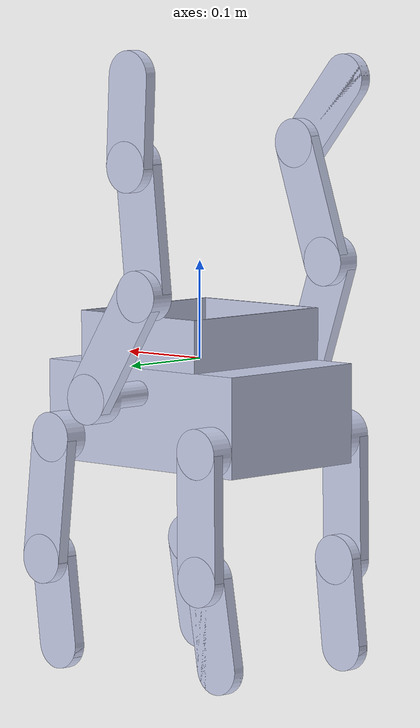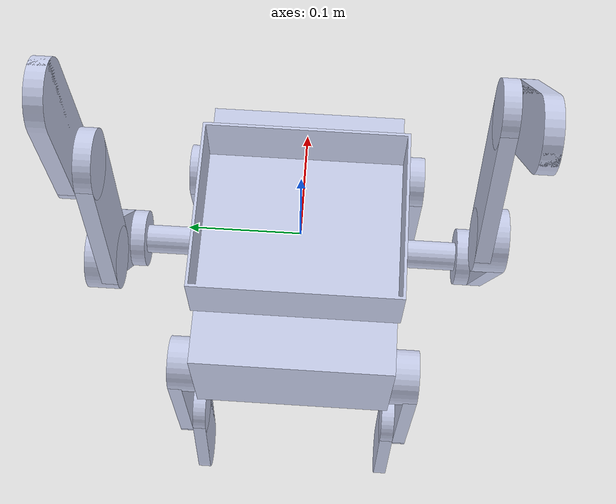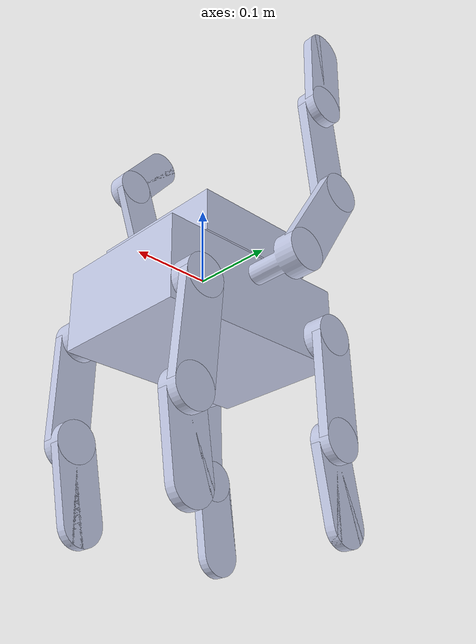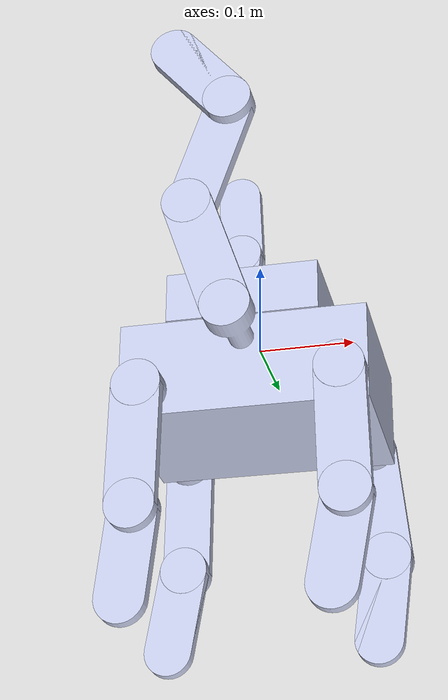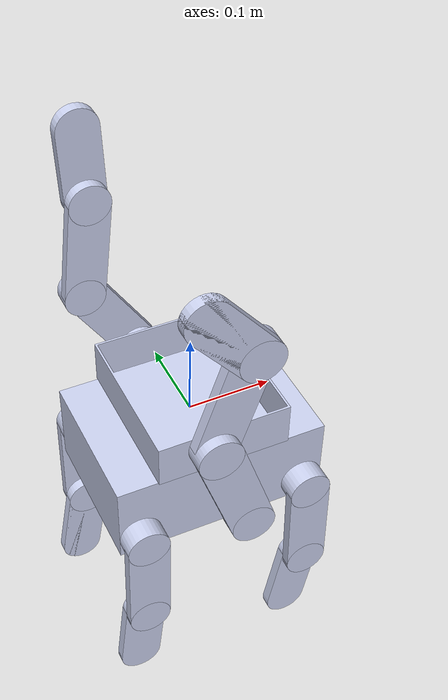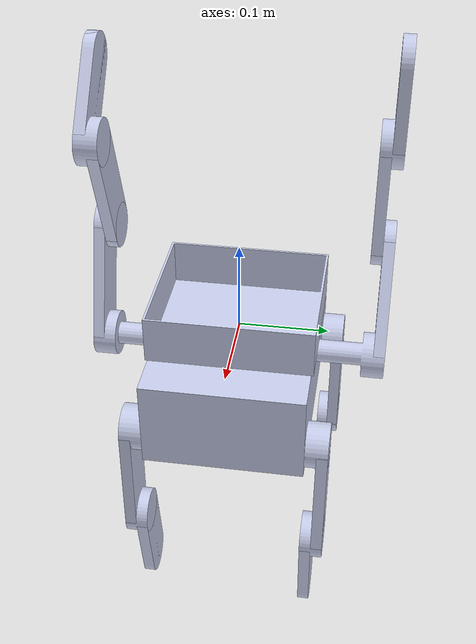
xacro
<?xml version="1.0"?>
<!-- Name your robot here -->
<robot name ="quad_walk" xmlns:xacro="http://wiki.ros.org/xacro">

<!-- Include your urdf files here -->
	<!-- Include Robot's urdf filepath -->
	<!-- Include Lidar's urdf filepath -->
	<xacro:include filename="$(find Project2_Assembly)/urdf/Project2_Assembly.urdf"/>

<!-- Add gazebo plugin for control here -->
	<gazebo>
		<plugin name="gazebo_ros_control" filename="libgazebo_ros_control.so">
			<robotNamespace>/quad_walk</robotNamespace>
			<robotSimType>gazebo_ros_control/DefaultRobotHWSim</robotSimType>
		        <legacyModeNS>true</legacyModeNS>
                </plugin>
	</gazebo>

</robot>

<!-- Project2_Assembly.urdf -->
<robot
  name="Project2_Assembly">
  <link
    name="dummy_link">
  </link>
  <joint
    name="dummy_joint"
    type="fixed">
    <parent
      link="dummy_link" />
    <child
      link="base_link" />
  </joint>
  <link
    name="base_link">
    <inertial>
      <origin
        xyz="-0.185748920268411 0.185789407892482 -0.798271405453909"
        rpy="0 0 0" />
      <mass
        value="4.36700755653188" />
      <inertia
        ixx="0.030365726134738"
        ixy="0.00652149162392971"
        ixz="0.00297506888940774"
        iyy="0.0178204642076725"
        iyz="0.000563260489121419"
        izz="0.0284925976105569" />
    </inertial>
    <visual>
      <origin
        xyz="0 0 0"
        rpy="0 0 0" />
      <geometry>
        <mesh
          filename="package://Project2_Assembly/meshes/base_link.STL" />
      </geometry>
      <material
        name="">
        <color
          rgba="0.792156862745098 0.819607843137255 0.933333333333333 1" />
      </material>
    </visual>
    <collision>
      <origin
        xyz="0 0 0"
        rpy="0 0 0" />
      <geometry>
        <mesh
          filename="package://Project2_Assembly/meshes/base_link.STL" />
      </geometry>
    </collision>
  </link>
  <link
    name="platform_link">
    <inertial>
      <origin
        xyz="8.32667268468867E-17 -5.55111512312578E-17 0.00454448000326668"
        rpy="0 0 0" />
      <mass
        value="0.221453327467568" />
      <inertia
        ixx="0.000766812354982266"
        ixy="3.04931861011548E-20"
        ixz="-1.01813360259967E-18"
        iyy="0.00100112681592481"
        iyz="1.21972744404619E-18"
        izz="0.00157928891231331" />
    </inertial>
    <visual>
      <origin
        xyz="0 0 0"
        rpy="0 0 0" />
      <geometry>
        <mesh
          filename="package://Project2_Assembly/meshes/platform_link.STL" />
      </geometry>
      <material
        name="">
        <color
          rgba="0.792156862745098 0.819607843137255 0.933333333333333 1" />
      </material>
    </visual>
    <collision>
      <origin
        xyz="0 0 0"
        rpy="0 0 0" />
      <geometry>
        <mesh
          filename="package://Project2_Assembly/meshes/platform_link.STL" />
      </geometry>
    </collision>
  </link>
  <joint
    name="platform_joint"
    type="fixed">
    <origin
      xyz="0 0 0"
      rpy="0 0 1.5707963267949" />
    <parent
      link="base_link" />
    <child
      link="platform_link" />
    <axis
      xyz="0 0 0" />
  </joint>
  <link
    name="left_arm_link">
    <inertial>
      <origin
        xyz="5.55111512312578E-17 -1.11022302462516E-16 0.0269203616457798"
        rpy="0 0 0" />
      <mass
        value="0.0772222198144585" />
      <inertia
        ixx="4.25551704324029E-05"
        ixy="1.6940658945086E-21"
        ixz="-2.5410988417629E-20"
        iyy="4.25551704324029E-05"
        iyz="9.95396061921811E-20"
        izz="1.8682757750811E-05" />
    </inertial>
    <visual>
      <origin
        xyz="0 0 0"
        rpy="0 0 0" />
      <geometry>
        <mesh
          filename="package://Project2_Assembly/meshes/left_arm_link.STL" />
      </geometry>
      <material
        name="">
        <color
          rgba="0.792156862745098 0.819607843137255 0.933333333333333 1" />
      </material>
    </visual>
    <collision>
      <origin
        xyz="0 0 0"
        rpy="0 0 0" />
      <geometry>
        <mesh
          filename="package://Project2_Assembly/meshes/left_arm_link.STL" />
      </geometry>
    </collision>
  </link>
  <joint
    name="left_arm_joint"
    type="fixed">
    <origin
      xyz="0 -0.112779638354221 -0.0279400000000001"
      rpy="-1.57079632679486 1.49005517178331 -3.14159265358976" />
    <parent
      link="base_link" />
    <child
      link="left_arm_link" />
    <axis
      xyz="0 0 1" />
  </joint>
  <link
    name="left_arm_link1">
    <inertial>
      <origin
        xyz="0.0634999999999999 -7.76462227847219E-14 0.0040296383542201"
        rpy="0 0 0" />
      <mass
        value="0.0561945800618472" />
      <inertia
        ixx="1.42240417239566E-05"
        ixy="2.92460359654413E-17"
        ixz="-4.70103285726137E-20"
        iyy="3.81793048154064E-05"
        iyz="8.470329472543E-21"
        izz="5.08927425696672E-05" />
    </inertial>
    <visual>
      <origin
        xyz="0 0 0"
        rpy="0 0 0" />
      <geometry>
        <mesh
          filename="package://Project2_Assembly/meshes/left_arm_link1.STL" />
      </geometry>
      <material
        name="">
        <color
          rgba="0.792156862745098 0.819607843137255 0.933333333333333 1" />
      </material>
    </visual>
    <collision>
      <origin
        xyz="0 0 0"
        rpy="0 0 0" />
      <geometry>
        <mesh
          filename="package://Project2_Assembly/meshes/left_arm_link1.STL" />
      </geometry>
    </collision>
  </link>
  <joint
    name="left_arm_joint1"
    type="continuous">
    <origin
      xyz="0 0 0.0499999999999999"
      rpy="3.14159265358979 0 -2.73383166744153" />
    <parent
      link="left_arm_link" />
    <child
      link="left_arm_link1" />
    <axis
      xyz="0 0 1" />
  </joint>
  <link
    name="left_arm_link2">
    <inertial>
      <origin
        xyz="-1.52655665885959E-15 2.4980018054066E-16 -0.0103796383542208"
        rpy="0 0 0" />
      <mass
        value="0.0514814798763058" />
      <inertia
        ixx="1.10712638523325E-05"
        ixy="4.76456032830544E-22"
        ixz="-1.48230765769503E-20"
        iyy="1.10712638523325E-05"
        iyz="1.47171974585435E-20"
        izz="1.66068957784987E-05" />
    </inertial>
    <visual>
      <origin
        xyz="0 0 0"
        rpy="0 0 0" />
      <geometry>
        <mesh
          filename="package://Project2_Assembly/meshes/left_arm_link2.STL" />
      </geometry>
      <material
        name="">
        <color
          rgba="0.792156862745098 0.819607843137255 0.933333333333333 1" />
      </material>
    </visual>
    <collision>
      <origin
        xyz="0 0 0"
        rpy="0 0 0" />
      <geometry>
        <mesh
          filename="package://Project2_Assembly/meshes/left_arm_link2.STL" />
      </geometry>
    </collision>
  </link>
  <joint
    name="left_arm_joint2"
    type="fixed">
    <origin
      xyz="0.127 0 0"
      rpy="-3.14159265358979 0 0.141401224368281" />
    <parent
      link="left_arm_link1" />
    <child
      link="left_arm_link2" />
    <axis
      xyz="0 0 1" />
  </joint>
  <link
    name="left_arm_link3">
    <inertial>
      <origin
        xyz="0.0635000000000196 6.46704911844154E-15 0.00445605177225594"
        rpy="0 0 0" />
      <mass
        value="0.0561945800618472" />
      <inertia
        ixx="1.42240417239566E-05"
        ixy="4.89690922631392E-20"
        ixz="1.63053842346453E-19"
        iyy="3.81793048154064E-05"
        iyz="-3.87517573368842E-20"
        izz="5.08927425696671E-05" />
    </inertial>
    <visual>
      <origin
        xyz="0 0 0"
        rpy="0 0 0" />
      <geometry>
        <mesh
          filename="package://Project2_Assembly/meshes/left_arm_link3.STL" />
      </geometry>
      <material
        name="">
        <color
          rgba="0.792156862745098 0.819607843137255 0.933333333333333 1" />
      </material>
    </visual>
    <collision>
      <origin
        xyz="0 0 0"
        rpy="0 0 0" />
      <geometry>
        <mesh
          filename="package://Project2_Assembly/meshes/left_arm_link3.STL" />
      </geometry>
    </collision>
  </link>
  <joint
    name="left_arm_joint3"
    type="continuous">
    <origin
      xyz="0 0 -0.0122735865819643"
      rpy="3.14159265358979 0 -0.51044745877229" />
    <parent
      link="left_arm_link2" />
    <child
      link="left_arm_link3" />
    <axis
      xyz="0 0 1" />
  </joint>
  <link
    name="left_arm_link4">
    <inertial>
      <origin
        xyz="1.13797860024079E-14 1.6903145549918E-14 -0.00189394822774391"
        rpy="0 0 0" />
      <mass
        value="0.0514814798763058" />
      <inertia
        ixx="1.10712638523325E-05"
        ixy="2.11758236813575E-22"
        ixz="-3.3881317890172E-21"
        iyy="1.10712638523325E-05"
        iyz="1.05879118406788E-21"
        izz="1.66068957784987E-05" />
    </inertial>
    <visual>
      <origin
        xyz="0 0 0"
        rpy="0 0 0" />
      <geometry>
        <mesh
          filename="package://Project2_Assembly/meshes/left_arm_link4.STL" />
      </geometry>
      <material
        name="">
        <color
          rgba="0.792156862745098 0.819607843137255 0.933333333333333 1" />
      </material>
    </visual>
    <collision>
      <origin
        xyz="0 0 0"
        rpy="0 0 0" />
      <geometry>
        <mesh
          filename="package://Project2_Assembly/meshes/left_arm_link4.STL" />
      </geometry>
    </collision>
  </link>
  <joint
    name="left_arm_joint4"
    type="fixed">
    <origin
      xyz="0.12700000000002 0 0"
      rpy="0 0 2.25512297298652" />
    <parent
      link="left_arm_link3" />
    <child
      link="left_arm_link4" />
    <axis
      xyz="0 0 1" />
  </joint>
  <link
    name="left_arm_link5">
    <inertial>
      <origin
        xyz="-0.0643991133502865 -7.39686090156511E-14 0.00824394822774355"
        rpy="0 0 0" />
      <mass
        value="0.0573547240000001" />
      <inertia
        ixx="1.31052198647767E-05"
        ixy="-2.4546591294956E-17"
        ixz="1.35737029797502E-19"
        iyy="4.03881189381033E-05"
        iyz="4.2351647362715E-21"
        izz="5.19515482305533E-05" />
    </inertial>
    <visual>
      <origin
        xyz="0 0 0"
        rpy="0 0 0" />
      <geometry>
        <mesh
          filename="package://Project2_Assembly/meshes/left_arm_link5.STL" />
      </geometry>
      <material
        name="">
        <color
          rgba="0.792156862745098 0.819607843137255 0.933333333333333 1" />
      </material>
    </visual>
    <collision>
      <origin
        xyz="0 0 0"
        rpy="0 0 0" />
      <geometry>
        <mesh
          filename="package://Project2_Assembly/meshes/left_arm_link5.STL" />
      </geometry>
    </collision>
  </link>
  <joint
    name="left_arm_joint5"
    type="continuous">
    <origin
      xyz="0 0 0"
      rpy="3.14159265358979 0 -0.136200538453035" />
    <parent
      link="left_arm_link4" />
    <child
      link="left_arm_link5" />
    <axis
      xyz="0 0 1" />
  </joint>
  <link
    name="left_arm_dummy_link">
    <inertial>
      <origin
        xyz="0.0245008866497048 0.0254 0.00635000000000008"
        rpy="0 0 0" />
      <mass
        value="0.0573547240000001" />
      <inertia
        ixx="1.31052198647767E-05"
        ixy="5.11396141904784E-20"
        ixz="5.9292306307801E-20"
        iyy="4.03881189381033E-05"
        iyz="-1.77876918923403E-20"
        izz="5.19515482305533E-05" />
    </inertial>
    <visual>
      <origin
        xyz="0 0 0"
        rpy="0 0 0" />
      <geometry>
        <mesh
          filename="package://Project2_Assembly/meshes/left_arm_dummy_link.STL" />
      </geometry>
      <material
        name="">
        <color
          rgba="0.792156862745098 0.819607843137255 0.933333333333333 1" />
      </material>
    </visual>
    <collision>
      <origin
        xyz="0 0 0"
        rpy="0 0 0" />
      <geometry>
        <mesh
          filename="package://Project2_Assembly/meshes/left_arm_dummy_link.STL" />
      </geometry>
    </collision>
  </link>
  <joint
    name="left_arm_dummy_joint"
    type="fixed">
    <origin
      xyz="-0.0888999999999685 -0.0254000000000961 0.00189394822774358"
      rpy="0 0 0" />
    <parent
      link="left_arm_link5" />
    <child
      link="left_arm_dummy_link" />
    <axis
      xyz="0 0 0" />
  </joint>
  <link
    name="right_arm_link">
    <inertial>
      <origin
        xyz="5.55111512312578E-17 2.08166817117217E-15 0.0270180534713057"
        rpy="0 0 0" />
      <mass
        value="0.0772222198144587" />
      <inertia
        ixx="4.2555170432403E-05"
        ixy="-1.85288457211878E-22"
        ixz="6.22569216231911E-20"
        iyy="4.2555170432403E-05"
        iyz="-4.31457407507659E-20"
        izz="1.86827577508111E-05" />
    </inertial>
    <visual>
      <origin
        xyz="0 0 0"
        rpy="0 0 0" />
      <geometry>
        <mesh
          filename="package://Project2_Assembly/meshes/right_arm_link.STL" />
      </geometry>
      <material
        name="">
        <color
          rgba="0.792156862745098 0.819607843137255 0.933333333333333 1" />
      </material>
    </visual>
    <collision>
      <origin
        xyz="0 0 0"
        rpy="0 0 0" />
      <geometry>
        <mesh
          filename="package://Project2_Assembly/meshes/right_arm_link.STL" />
      </geometry>
    </collision>
  </link>
  <joint
    name="right_arm_joint"
    type="fixed">
    <origin
      xyz="0 0.112681946528693 -0.0279400000000012"
      rpy="1.57079632679492 1.49631531067135 -3.14159265358978" />
    <parent
      link="base_link" />
    <child
      link="right_arm_link" />
    <axis
      xyz="0 0 1" />
  </joint>
  <link
    name="right_arm_link1">
    <inertial>
      <origin
        xyz="0.0635000000000006 1.97064586870965E-15 0.00190156102875016"
        rpy="0 0 0" />
      <mass
        value="0.0561945800618471" />
      <inertia
        ixx="1.42240417239566E-05"
        ixy="2.35051642863068E-20"
        ixz="-3.0916702574782E-20"
        iyy="3.81793048154063E-05"
        iyz="-1.35525271560688E-20"
        izz="5.08927425696671E-05" />
    </inertial>
    <visual>
      <origin
        xyz="0 0 0"
        rpy="0 0 0" />
      <geometry>
        <mesh
          filename="package://Project2_Assembly/meshes/right_arm_link1.STL" />
      </geometry>
      <material
        name="">
        <color
          rgba="0.792156862745098 0.819607843137255 0.933333333333333 1" />
      </material>
    </visual>
    <collision>
      <origin
        xyz="0 0 0"
        rpy="0 0 0" />
      <geometry>
        <mesh
          filename="package://Project2_Assembly/meshes/right_arm_link1.STL" />
      </geometry>
    </collision>
  </link>
  <joint
    name="right_arm_joint1"
    type="continuous">
    <origin
      xyz="0 0 0.0441664924425549"
      rpy="0 0 2.49526943677936" />
    <parent
      link="right_arm_link" />
    <child
      link="right_arm_link1" />
    <axis
      xyz="0 0 1" />
  </joint>
  <link
    name="right_arm_link2">
    <inertial>
      <origin
        xyz="-2.77555756156289E-17 -2.77555756156289E-17 -0.00444843897124922"
        rpy="0 0 0" />
      <mass
        value="0.0514814798763058" />
      <inertia
        ixx="1.10712638523325E-05"
        ixy="-1.00150892664858E-21"
        ixz="-3.93158945146454E-21"
        iyy="1.10712638523325E-05"
        iyz="-5.0821976835258E-21"
        izz="1.66068957784987E-05" />
    </inertial>
    <visual>
      <origin
        xyz="0 0 0"
        rpy="0 0 0" />
      <geometry>
        <mesh
          filename="package://Project2_Assembly/meshes/right_arm_link2.STL" />
      </geometry>
      <material
        name="">
        <color
          rgba="0.792156862745098 0.819607843137255 0.933333333333333 1" />
      </material>
    </visual>
    <collision>
      <origin
        xyz="0 0 0"
        rpy="0 0 0" />
      <geometry>
        <mesh
          filename="package://Project2_Assembly/meshes/right_arm_link2.STL" />
      </geometry>
    </collision>
  </link>
  <joint
    name="right_arm_joint2"
    type="fixed">
    <origin
      xyz="0.127 0 0"
      rpy="0 0 2.2545" />
    <parent
      link="right_arm_link1" />
    <child
      link="right_arm_link2" />
    <axis
      xyz="0 0 1" />
  </joint>
  <link
    name="right_arm_link3">
    <inertial>
      <origin
        xyz="0.0635000000000153 1.44606548957427E-14 -0.0107984389712492"
        rpy="0 0 0" />
      <mass
        value="0.056194580061847" />
      <inertia
        ixx="1.42240417239566E-05"
        ixy="-1.42010367563104E-19"
        ixz="-3.81164826264435E-21"
        iyy="3.81793048154062E-05"
        iyz="-1.84494363823827E-20"
        izz="5.08927425696669E-05" />
    </inertial>
    <visual>
      <origin
        xyz="0 0 0"
        rpy="0 0 0" />
      <geometry>
        <mesh
          filename="package://Project2_Assembly/meshes/right_arm_link3.STL" />
      </geometry>
      <material
        name="">
        <color
          rgba="0.792156862745098 0.819607843137255 0.933333333333333 1" />
      </material>
    </visual>
    <collision>
      <origin
        xyz="0 0 0"
        rpy="0 0 0" />
      <geometry>
        <mesh
          filename="package://Project2_Assembly/meshes/right_arm_link3.STL" />
      </geometry>
    </collision>
  </link>
  <joint
    name="right_arm_joint3"
    type="continuous">
    <origin
      xyz="0 0 0"
      rpy="0 0 -1.57576453791578" />
    <parent
      link="right_arm_link2" />
    <child
      link="right_arm_link3" />
    <axis
      xyz="0 0 1" />
  </joint>
  <link
    name="right_arm_link4">
    <inertial>
      <origin
        xyz="-1.15740750317173E-14 -9.99200722162641E-15 0.00444843897124952"
        rpy="0 0 0" />
      <mass
        value="0.0514814798763058" />
      <inertia
        ixx="1.10712638523325E-05"
        ixy="-4.2351647362715E-22"
        ixz="2.96461531539005E-21"
        iyy="1.10712638523325E-05"
        iyz="-4.2351647362715E-21"
        izz="1.66068957784987E-05" />
    </inertial>
    <visual>
      <origin
        xyz="0 0 0"
        rpy="0 0 0" />
      <geometry>
        <mesh
          filename="package://Project2_Assembly/meshes/right_arm_link4.STL" />
      </geometry>
      <material
        name="">
        <color
          rgba="0.792156862745098 0.819607843137255 0.933333333333333 1" />
      </material>
    </visual>
    <collision>
      <origin
        xyz="0 0 0"
        rpy="0 0 0" />
      <geometry>
        <mesh
          filename="package://Project2_Assembly/meshes/right_arm_link4.STL" />
      </geometry>
    </collision>
  </link>
  <joint
    name="right_arm_joint4"
    type="fixed">
    <origin
      xyz="0.127000000000015 0 0"
      rpy="3.14159265358979 0 0.791256864324291" />
    <parent
      link="right_arm_link3" />
    <child
      link="right_arm_link4" />
    <axis
      xyz="0 0 1" />
  </joint>
  <link
    name="right_arm_link5">
    <inertial>
      <origin
        xyz="-0.0643991133502805 -1.00697228333502E-13 -0.00190156102875053"
        rpy="0 0 0" />
      <mass
        value="0.057354724" />
      <inertia
        ixx="1.31052198647767E-05"
        ixy="-4.07117651070511E-17"
        ixz="4.31986803099693E-20"
        iyy="4.03881189381032E-05"
        iyz="-1.05879118406788E-21"
        izz="5.19515482305532E-05" />
    </inertial>
    <visual>
      <origin
        xyz="0 0 0"
        rpy="0 0 0" />
      <geometry>
        <mesh
          filename="package://Project2_Assembly/meshes/right_arm_link5.STL" />
      </geometry>
      <material
        name="">
        <color
          rgba="0.792156862745098 0.819607843137255 0.933333333333333 1" />
      </material>
    </visual>
    <collision>
      <origin
        xyz="0 0 0"
        rpy="0 0 0" />
      <geometry>
        <mesh
          filename="package://Project2_Assembly/meshes/right_arm_link5.STL" />
      </geometry>
    </collision>
  </link>
  <joint
    name="right_arm_joint5"
    type="continuous">
    <origin
      xyz="0 0 0"
      rpy="0 0 -2.2001" />
    <parent
      link="right_arm_link4" />
    <child
      link="right_arm_link5" />
    <axis
      xyz="0 0 1" />
  </joint>
  <link
    name="right_arm_dummy_link">
    <inertial>
      <origin
        xyz="0.0245008866497046 0.0253999999999988 0.00634999999999999"
        rpy="0 0 0" />
      <mass
        value="0.057354724" />
      <inertia
        ixx="1.31052198647767E-05"
        ixy="8.99972506457694E-21"
        ixz="1.99052742604761E-20"
        iyy="4.03881189381032E-05"
        iyz="-8.89384594617015E-21"
        izz="5.19515482305532E-05" />
    </inertial>
    <visual>
      <origin
        xyz="0 0 0"
        rpy="0 0 0" />
      <geometry>
        <mesh
          filename="package://Project2_Assembly/meshes/right_arm_dummy_link.STL" />
      </geometry>
      <material
        name="">
        <color
          rgba="0.792156862745098 0.819607843137255 0.933333333333333 1" />
      </material>
    </visual>
    <collision>
      <origin
        xyz="0 0 0"
        rpy="0 0 0" />
      <geometry>
        <mesh
          filename="package://Project2_Assembly/meshes/right_arm_dummy_link.STL" />
      </geometry>
    </collision>
  </link>
  <joint
    name="right_arm_dummy_joint"
    type="fixed">
    <origin
      xyz="-0.0888999999999474 -0.0254000000001373 -0.00825156102875052"
      rpy="0 0 0" />
    <parent
      link="right_arm_link5" />
    <child
      link="right_arm_dummy_link" />
    <axis
      xyz="0 0 0" />
  </joint>
  <link
    name="left_rear_hip_link">
    <inertial>
      <origin
        xyz="0 -2.77555756156289E-17 1.11022302462516E-16"
        rpy="0 0 0" />
      <mass
        value="0.0772222198144587" />
      <inertia
        ixx="4.2555170432403E-05"
        ixy="8.470329472543E-22"
        ixz="2.03287907341032E-20"
        iyy="4.2555170432403E-05"
        iyz="-3.89635155736978E-20"
        izz="1.86827577508111E-05" />
    </inertial>
    <visual>
      <origin
        xyz="0 0 0"
        rpy="0 0 0" />
      <geometry>
        <mesh
          filename="package://Project2_Assembly/meshes/left_rear_hip_link.STL" />
      </geometry>
      <material
        name="">
        <color
          rgba="0.792156862745098 0.819607843137255 0.933333333333333 1" />
      </material>
    </visual>
    <collision>
      <origin
        xyz="0 0 0"
        rpy="0 0 0" />
      <geometry>
        <mesh
          filename="package://Project2_Assembly/meshes/left_rear_hip_link.STL" />
      </geometry>
    </collision>
  </link>
  <joint
    name="left_rear_hip_joint"
    type="fixed">
    <origin
      xyz="0.1016 -0.0889 -0.07874"
      rpy="1.5708 1.3266 0" />
    <parent
      link="base_link" />
    <child
      link="left_rear_hip_link" />
    <axis
      xyz="0 0 0" />
  </joint>
  <link
    name="left_rear_hip_link1">
    <inertial>
      <origin
        xyz="-0.0634999999999989 1.11022302462516E-15 -0.00348570857054564"
        rpy="0 0 0" />
      <mass
        value="0.0561945800618471" />
      <inertia
        ixx="1.42240417239566E-05"
        ixy="-3.08372932359769E-20"
        ixz="1.49501315190384E-19"
        iyy="3.81793048154063E-05"
        iyz="1.33407689192552E-20"
        izz="5.0892742569667E-05" />
    </inertial>
    <visual>
      <origin
        xyz="0 0 0"
        rpy="0 0 0" />
      <geometry>
        <mesh
          filename="package://Project2_Assembly/meshes/left_rear_hip_link1.STL" />
      </geometry>
      <material
        name="">
        <color
          rgba="0.792156862745098 0.819607843137255 0.933333333333333 1" />
      </material>
    </visual>
    <collision>
      <origin
        xyz="0 0 0"
        rpy="0 0 0" />
      <geometry>
        <mesh
          filename="package://Project2_Assembly/meshes/left_rear_hip_link1.STL" />
      </geometry>
    </collision>
  </link>
  <joint
    name="left_rear_hip_joint1"
    type="continuous">
    <origin
      xyz="0 0 0.0155642914294541"
      rpy="-3.14159265358979 0 2.9227694943902" />
    <parent
      link="left_rear_hip_link" />
    <child
      link="left_rear_hip_link1" />
    <axis
      xyz="0 0 1" />
  </joint>
  <link
    name="left_rear_knee_link">
    <inertial>
      <origin
        xyz="5.55111512312578E-17 -1.11022302462516E-16 -0.00286429142945449"
        rpy="0 0 0" />
      <mass
        value="0.0514814798763059" />
      <inertia
        ixx="1.10712638523325E-05"
        ixy="2.11758236813575E-22"
        ixz="-3.0916702574782E-20"
        iyy="1.10712638523325E-05"
        iyz="-1.94817577868489E-20"
        izz="1.66068957784988E-05" />
    </inertial>
    <visual>
      <origin
        xyz="0 0 0"
        rpy="0 0 0" />
      <geometry>
        <mesh
          filename="package://Project2_Assembly/meshes/left_rear_knee_link.STL" />
      </geometry>
      <material
        name="">
        <color
          rgba="0.792156862745098 0.819607843137255 0.933333333333333 1" />
      </material>
    </visual>
    <collision>
      <origin
        xyz="0 0 0"
        rpy="0 0 0" />
      <geometry>
        <mesh
          filename="package://Project2_Assembly/meshes/left_rear_knee_link.STL" />
      </geometry>
    </collision>
  </link>
  <joint
    name="left_rear_knee_joint"
    type="fixed">
    <origin
      xyz="-0.127 0 0"
      rpy="3.14159265358979 0 1.22925344599165" />
    <parent
      link="left_rear_hip_link1" />
    <child
      link="left_rear_knee_link" />
    <axis
      xyz="0 0 1" />
  </joint>
  <link
    name="left_rear_knee_link1">
    <inertial>
      <origin
        xyz="-0.0643991133502946 -3.27515792264421E-15 0.00921429142945451"
        rpy="0 0 0" />
      <mass
        value="0.0573547240000001" />
      <inertia
        ixx="1.31052198647767E-05"
        ixy="-1.33614153473446E-18"
        ixz="-6.01393392550553E-20"
        iyy="4.03881189381034E-05"
        iyz="-6.35274710440725E-22"
        izz="5.19515482305534E-05" />
    </inertial>
    <visual>
      <origin
        xyz="0 0 0"
        rpy="0 0 0" />
      <geometry>
        <mesh
          filename="package://Project2_Assembly/meshes/left_rear_knee_link1.STL" />
      </geometry>
      <material
        name="">
        <color
          rgba="0.792156862745098 0.819607843137255 0.933333333333333 1" />
      </material>
    </visual>
    <collision>
      <origin
        xyz="0 0 0"
        rpy="0 0 0" />
      <geometry>
        <mesh
          filename="package://Project2_Assembly/meshes/left_rear_knee_link1.STL" />
      </geometry>
    </collision>
  </link>
  <joint
    name="left_rear_knee_joint1"
    type="continuous">
    <origin
      xyz="0 0 0"
      rpy="3.14159265358979 0 1.02130634175399" />
    <parent
      link="left_rear_knee_link" />
    <child
      link="left_rear_knee_link1" />
    <axis
      xyz="0 0 1" />
  </joint>
  <link
    name="left_rear_dummy_link">
    <inertial>
      <origin
        xyz="0.0245008866497048 0.0254 0.00635000000000019"
        rpy="0 0 0" />
      <mass
        value="0.0573547240000001" />
      <inertia
        ixx="1.31052198647767E-05"
        ixy="2.45110159111713E-20"
        ixz="-5.9292306307801E-20"
        iyy="4.03881189381034E-05"
        iyz="2.85873619698326E-21"
        izz="5.19515482305534E-05" />
    </inertial>
    <visual>
      <origin
        xyz="0 0 0"
        rpy="0 0 0" />
      <geometry>
        <mesh
          filename="package://Project2_Assembly/meshes/left_rear_dummy_link.STL" />
      </geometry>
      <material
        name="">
        <color
          rgba="0.792156862745098 0.819607843137255 0.933333333333333 1" />
      </material>
    </visual>
    <collision>
      <origin
        xyz="0 0 0"
        rpy="0 0 0" />
      <geometry>
        <mesh
          filename="package://Project2_Assembly/meshes/left_rear_dummy_link.STL" />
      </geometry>
    </collision>
  </link>
  <joint
    name="left_rear_dummy_joint"
    type="fixed">
    <origin
      xyz="-0.0888999999999984 -0.0254000000000045 0.00286429142945438"
      rpy="0 0 0" />
    <parent
      link="left_rear_knee_link1" />
    <child
      link="left_rear_dummy_link" />
    <axis
      xyz="0 0 0" />
  </joint>
  <link
    name="left_front_hip_link">
    <inertial>
      <origin
        xyz="-5.55111512312578E-17 0 -1.11022302462516E-16"
        rpy="0 0 0" />
      <mass
        value="0.0772222198144586" />
      <inertia
        ixx="4.25551704324029E-05"
        ixy="-2.91167575618666E-21"
        ixz="7.83505476210228E-20"
        iyy="4.25551704324029E-05"
        iyz="-1.84759061619844E-20"
        izz="1.8682757750811E-05" />
    </inertial>
    <visual>
      <origin
        xyz="0 0 0"
        rpy="0 0 0" />
      <geometry>
        <mesh
          filename="package://Project2_Assembly/meshes/left_front_hip_link.STL" />
      </geometry>
      <material
        name="">
        <color
          rgba="0.792156862745098 0.819607843137255 0.933333333333333 1" />
      </material>
    </visual>
    <collision>
      <origin
        xyz="0 0 0"
        rpy="0 0 0" />
      <geometry>
        <mesh
          filename="package://Project2_Assembly/meshes/left_front_hip_link.STL" />
      </geometry>
    </collision>
  </link>
  <joint
    name="left_front_hip_joint"
    type="fixed">
    <origin
      xyz="-0.1016 -0.0889 -0.07874"
      rpy="-1.5708 1.4089 3.1416" />
    <parent
      link="base_link" />
    <child
      link="left_front_hip_link" />
    <axis
      xyz="0 0 0" />
  </joint>
  <link
    name="left_front_hip_link1">
    <inertial>
      <origin
        xyz="-0.0634999999999989 3.28903571045203E-15 -0.00413058115419834"
        rpy="0 0 0" />
      <mass
        value="0.0561945800618472" />
      <inertia
        ixx="1.42240417239566E-05"
        ixy="1.79729803495522E-20"
        ixz="3.64224167319349E-20"
        iyy="3.81793048154064E-05"
        iyz="-4.80691197566815E-20"
        izz="5.08927425696672E-05" />
    </inertial>
    <visual>
      <origin
        xyz="0 0 0"
        rpy="0 0 0" />
      <geometry>
        <mesh
          filename="package://Project2_Assembly/meshes/left_front_hip_link1.STL" />
      </geometry>
      <material
        name="">
        <color
          rgba="0.792156862745098 0.819607843137255 0.933333333333333 1" />
      </material>
    </visual>
    <collision>
      <origin
        xyz="0 0 0"
        rpy="0 0 0" />
      <geometry>
        <mesh
          filename="package://Project2_Assembly/meshes/left_front_hip_link1.STL" />
      </geometry>
    </collision>
  </link>
  <joint
    name="left_front_hip_joint1"
    type="continuous">
    <origin
      xyz="0 0 0.0149194188458016"
      rpy="3.14159265358979 0 -2.99385816079686" />
    <parent
      link="left_front_hip_link" />
    <child
      link="left_front_hip_link1" />
    <axis
      xyz="0 0 1" />
  </joint>
  <link
    name="left_front_knee_link">
    <inertial>
      <origin
        xyz="-5.55111512312578E-17 0 -0.00221941884580201"
        rpy="0 0 0" />
      <mass
        value="0.0514814798763057" />
      <inertia
        ixx="1.10712638523324E-05"
        ixy="2.11758236813575E-22"
        ixz="1.03761536038652E-20"
        iyy="1.10712638523324E-05"
        iyz="4.02340649945793E-21"
        izz="1.66068957784987E-05" />
    </inertial>
    <visual>
      <origin
        xyz="0 0 0"
        rpy="0 0 0" />
      <geometry>
        <mesh
          filename="package://Project2_Assembly/meshes/left_front_knee_link.STL" />
      </geometry>
      <material
        name="">
        <color
          rgba="0.792156862745098 0.819607843137255 0.933333333333333 1" />
      </material>
    </visual>
    <collision>
      <origin
        xyz="0 0 0"
        rpy="0 0 0" />
      <geometry>
        <mesh
          filename="package://Project2_Assembly/meshes/left_front_knee_link.STL" />
      </geometry>
    </collision>
  </link>
  <joint
    name="left_front_knee_joint"
    type="fixed">
    <origin
      xyz="-0.127000000000001 0 0"
      rpy="3.14159265358979 0 2.71763994433786" />
    <parent
      link="left_front_hip_link1" />
    <child
      link="left_front_knee_link" />
    <axis
      xyz="0 0 1" />
  </joint>
  <link
    name="left_front_knee_link1">
    <inertial>
      <origin
        xyz="-0.0643991133502949 -9.71445146547012E-16 0.00856941884580165"
        rpy="0 0 0" />
      <mass
        value="0.057354724" />
      <inertia
        ixx="1.31052198647767E-05"
        ixy="-9.67440665939969E-19"
        ixz="-5.84452733605467E-20"
        iyy="4.03881189381033E-05"
        iyz="4.02340649945793E-21"
        izz="5.19515482305533E-05" />
    </inertial>
    <visual>
      <origin
        xyz="0 0 0"
        rpy="0 0 0" />
      <geometry>
        <mesh
          filename="package://Project2_Assembly/meshes/left_front_knee_link1.STL" />
      </geometry>
      <material
        name="">
        <color
          rgba="0.792156862745098 0.819607843137255 0.933333333333333 1" />
      </material>
    </visual>
    <collision>
      <origin
        xyz="0 0 0"
        rpy="0 0 0" />
      <geometry>
        <mesh
          filename="package://Project2_Assembly/meshes/left_front_knee_link1.STL" />
      </geometry>
    </collision>
  </link>
  <joint
    name="left_front_knee_joint1"
    type="continuous">
    <origin
      xyz="0 0 0"
      rpy="-3.14159265358979 0 2.62289732606784" />
    <parent
      link="left_front_knee_link" />
    <child
      link="left_front_knee_link1" />
    <axis
      xyz="0 0 1" />
  </joint>
  <link
    name="left_front_dummy_link">
    <inertial>
      <origin
        xyz="0.0245008866497048 0.0254000000000001 0.00634999999999991"
        rpy="0 0 0" />
      <mass
        value="0.057354724" />
      <inertia
        ixx="1.31052198647767E-05"
        ixy="-1.02117928161509E-19"
        ixz="8.42797782518029E-20"
        iyy="4.03881189381033E-05"
        iyz="4.74073752666391E-20"
        izz="5.19515482305533E-05" />
    </inertial>
    <visual>
      <origin
        xyz="0 0 0"
        rpy="0 0 0" />
      <geometry>
        <mesh
          filename="package://Project2_Assembly/meshes/left_front_dummy_link.STL" />
      </geometry>
      <material
        name="">
        <color
          rgba="0.792156862745098 0.819607843137255 0.933333333333333 1" />
      </material>
    </visual>
    <collision>
      <origin
        xyz="0 0 0"
        rpy="0 0 0" />
      <geometry>
        <mesh
          filename="package://Project2_Assembly/meshes/left_front_dummy_link.STL" />
      </geometry>
    </collision>
  </link>
  <joint
    name="left_front_dummy_joint"
    type="fixed">
    <origin
      xyz="-0.0888999999999987 -0.0254000000000019 0.00221941884580146"
      rpy="0 0 0" />
    <parent
      link="left_front_knee_link1" />
    <child
      link="left_front_dummy_link" />
    <axis
      xyz="0 0 0" />
  </joint>
  <link
    name="right_front_hip_link">
    <inertial>
      <origin
        xyz="1.38777878078145E-17 5.55111512312578E-17 0.0271859005085105"
        rpy="0 0 0" />
      <mass
        value="0.0772222198144587" />
      <inertia
        ixx="4.25551704324029E-05"
        ixy="-2.38228016415272E-22"
        ixz="-7.70270586409379E-21"
        iyy="4.25551704324029E-05"
        iyz="-4.06575814682064E-20"
        izz="1.86827577508111E-05" />
    </inertial>
    <visual>
      <origin
        xyz="0 0 0"
        rpy="0 0 0" />
      <geometry>
        <mesh
          filename="package://Project2_Assembly/meshes/right_front_hip_link.STL" />
      </geometry>
      <material
        name="">
        <color
          rgba="0.792156862745098 0.819607843137255 0.933333333333333 1" />
      </material>
    </visual>
    <collision>
      <origin
        xyz="0 0 0"
        rpy="0 0 0" />
      <geometry>
        <mesh
          filename="package://Project2_Assembly/meshes/right_front_hip_link.STL" />
      </geometry>
    </collision>
  </link>
  <joint
    name="right_front_hip_joint"
    type="fixed">
    <origin
      xyz="-0.1016 0.061714 -0.07874"
      rpy="1.5708 -0.063777 3.1416" />
    <parent
      link="base_link" />
    <child
      link="right_front_hip_link" />
    <axis
      xyz="0 0 1" />
  </joint>
  <link
    name="right_front_hip_link1">
    <inertial>
      <origin
        xyz="0.0635000000000002 -1.61759494687885E-13 0.0040748192125461"
        rpy="0 0 0" />
      <mass
        value="0.056194580061847" />
      <inertia
        ixx="1.42240417239566E-05"
        ixy="6.100495398759E-17"
        ixz="5.46336250979024E-20"
        iyy="3.81793048154062E-05"
        iyz="-1.42936809849163E-20"
        izz="5.08927425696669E-05" />
    </inertial>
    <visual>
      <origin
        xyz="0 0 0"
        rpy="0 0 0" />
      <geometry>
        <mesh
          filename="package://Project2_Assembly/meshes/right_front_hip_link1.STL" />
      </geometry>
      <material
        name="">
        <color
          rgba="0.792156862745098 0.819607843137255 0.933333333333333 1" />
      </material>
    </visual>
    <collision>
      <origin
        xyz="0 0 0"
        rpy="0 0 0" />
      <geometry>
        <mesh
          filename="package://Project2_Assembly/meshes/right_front_hip_link1.STL" />
      </geometry>
    </collision>
  </link>
  <joint
    name="right_front_hip_joint1"
    type="continuous">
    <origin
      xyz="0 0 0.0421610812959619"
      rpy="0 0 -1.62386123679691" />
    <parent
      link="right_front_hip_link" />
    <child
      link="right_front_hip_link1" />
    <axis
      xyz="0 0 1" />
  </joint>
  <link
    name="right_front_knee_link">
    <inertial>
      <origin
        xyz="0 0 -0.00227518078745398"
        rpy="0 0 0" />
      <mass
        value="0.0514814798763057" />
      <inertia
        ixx="1.10712638523325E-05"
        ixy="-4.2351647362715E-22"
        ixz="1.65171424714589E-20"
        iyy="1.10712638523324E-05"
        iyz="8.68208770935658E-21"
        izz="1.66068957784987E-05" />
    </inertial>
    <visual>
      <origin
        xyz="0 0 0"
        rpy="0 0 0" />
      <geometry>
        <mesh
          filename="package://Project2_Assembly/meshes/right_front_knee_link.STL" />
      </geometry>
      <material
        name="">
        <color
          rgba="0.792156862745098 0.819607843137255 0.933333333333333 1" />
      </material>
    </visual>
    <collision>
      <origin
        xyz="0 0 0"
        rpy="0 0 0" />
      <geometry>
        <mesh
          filename="package://Project2_Assembly/meshes/right_front_knee_link.STL" />
      </geometry>
    </collision>
  </link>
  <joint
    name="right_front_knee_joint"
    type="fixed">
    <origin
      xyz="0.127 0 0"
      rpy="0 0 -2.53988297981886" />
    <parent
      link="right_front_hip_link1" />
    <child
      link="right_front_knee_link" />
    <axis
      xyz="0 0 1" />
  </joint>
  <link
    name="right_front_knee_link1">
    <inertial>
      <origin
        xyz="-0.0643991133502952 -1.66533453693773E-16 -0.00862518078745406"
        rpy="0 0 0" />
      <mass
        value="0.0573547240000001" />
      <inertia
        ixx="1.31052198647767E-05"
        ixy="-5.85776222585552E-20"
        ixz="-2.45639554703747E-20"
        iyy="4.03881189381034E-05"
        iyz="2.00111533788828E-20"
        izz="5.19515482305535E-05" />
    </inertial>
    <visual>
      <origin
        xyz="0 0 0"
        rpy="0 0 0" />
      <geometry>
        <mesh
          filename="package://Project2_Assembly/meshes/right_front_knee_link1.STL" />
      </geometry>
      <material
        name="">
        <color
          rgba="0.792156862745098 0.819607843137255 0.933333333333333 1" />
      </material>
    </visual>
    <collision>
      <origin
        xyz="0 0 0"
        rpy="0 0 0" />
      <geometry>
        <mesh
          filename="package://Project2_Assembly/meshes/right_front_knee_link1.STL" />
      </geometry>
    </collision>
  </link>
  <joint
    name="right_front_knee_joint1"
    type="continuous">
    <origin
      xyz="0 0 0"
      rpy="0 0 -0.444918552874764" />
    <parent
      link="right_front_knee_link" />
    <child
      link="right_front_knee_link1" />
    <axis
      xyz="0 0 1" />
  </joint>
  <link
    name="right_front_dummy_link">
    <inertial>
      <origin
        xyz="0.0245008866497047 0.0254000000000001 0.00635000000000002"
        rpy="0 0 0" />
      <mass
        value="0.0573547240000001" />
      <inertia
        ixx="1.31052198647767E-05"
        ixy="-5.12851979782877E-20"
        ixz="-2.58345048912562E-20"
        iyy="4.03881189381034E-05"
        iyz="1.83170874843742E-20"
        izz="5.19515482305534E-05" />
    </inertial>
    <visual>
      <origin
        xyz="0 0 0"
        rpy="0 0 0" />
      <geometry>
        <mesh
          filename="package://Project2_Assembly/meshes/right_front_dummy_link.STL" />
      </geometry>
      <material
        name="">
        <color
          rgba="0.792156862745098 0.819607843137255 0.933333333333333 1" />
      </material>
    </visual>
    <collision>
      <origin
        xyz="0 0 0"
        rpy="0 0 0" />
      <geometry>
        <mesh
          filename="package://Project2_Assembly/meshes/right_front_dummy_link.STL" />
      </geometry>
    </collision>
  </link>
  <joint
    name="right_front_dummy_joint"
    type="fixed">
    <origin
      xyz="-0.0888999999999999 -0.0254000000000002 -0.014975180787454"
      rpy="0 0 0" />
    <parent
      link="right_front_knee_link1" />
    <child
      link="right_front_dummy_link" />
    <axis
      xyz="0 0 0" />
  </joint>
  <link
    name="right_rear_hip_link">
    <inertial>
      <origin
        xyz="-5.55111512312578E-17 -9.71445146547012E-17 0.03383948887112"
        rpy="0 0 0" />
      <mass
        value="0.0772222198144586" />
      <inertia
        ixx="4.25551704324029E-05"
        ixy="-4.2351647362715E-22"
        ixz="2.15993401549847E-20"
        iyy="4.25551704324029E-05"
        iyz="7.45388993583784E-20"
        izz="1.86827577508111E-05" />
    </inertial>
    <visual>
      <origin
        xyz="0 0 0"
        rpy="0 0 0" />
      <geometry>
        <mesh
          filename="package://Project2_Assembly/meshes/right_rear_hip_link.STL" />
      </geometry>
      <material
        name="">
        <color
          rgba="0.792156862745098 0.819607843137255 0.933333333333333 1" />
      </material>
    </visual>
    <collision>
      <origin
        xyz="0 0 0"
        rpy="0 0 0" />
      <geometry>
        <mesh
          filename="package://Project2_Assembly/meshes/right_rear_hip_link.STL" />
      </geometry>
    </collision>
  </link>
  <joint
    name="right_rear_hip_joint"
    type="fixed">
    <origin
      xyz="0.101600000000001 0.0550605111288811 -0.0787400000000002"
      rpy="1.5707963267949 -1.01459157286801 3.14159265358979" />
    <parent
      link="base_link" />
    <child
      link="right_rear_hip_link" />
    <axis
      xyz="0 0 1" />
  </joint>
  <link
    name="right_rear_hip_link1">
    <inertial>
      <origin
        xyz="-0.0635000000001462 -1.87239113103033E-13 0.0028894888711179"
        rpy="0 0 0" />
      <mass
        value="0.0561945800618472" />
      <inertia
        ixx="1.42240417239566E-05"
        ixy="2.96461531539005E-20"
        ixz="1.10537799616686E-19"
        iyy="3.81793048154063E-05"
        iyz="-3.3881317890172E-21"
        izz="5.0892742569667E-05" />
    </inertial>
    <visual>
      <origin
        xyz="0 0 0"
        rpy="0 0 0" />
      <geometry>
        <mesh
          filename="package://Project2_Assembly/meshes/right_rear_hip_link1.STL" />
      </geometry>
      <material
        name="">
        <color
          rgba="0.792156862745098 0.819607843137255 0.933333333333333 1" />
      </material>
    </visual>
    <collision>
      <origin
        xyz="0 0 0"
        rpy="0 0 0" />
      <geometry>
        <mesh
          filename="package://Project2_Assembly/meshes/right_rear_hip_link1.STL" />
      </geometry>
    </collision>
  </link>
  <joint
    name="right_rear_hip_joint1"
    type="continuous">
    <origin
      xyz="0 0 0.05"
      rpy="0 0 0.449320374729743" />
    <parent
      link="right_rear_hip_link" />
    <child
      link="right_rear_hip_link1" />
    <axis
      xyz="0 0 1" />
  </joint>
  <link
    name="right_rear_knee_link">
    <inertial>
      <origin
        xyz="8.22120149734928E-14 1.21069820835373E-13 -0.00346051112888224"
        rpy="0 0 0" />
      <mass
        value="0.0514814798763058" />
      <inertia
        ixx="1.10712638523325E-05"
        ixy="-2.64697796016969E-21"
        ixz="5.0821976835258E-21"
        iyy="1.10712638523325E-05"
        iyz="-3.3881317890172E-21"
        izz="1.66068957784987E-05" />
    </inertial>
    <visual>
      <origin
        xyz="0 0 0"
        rpy="0 0 0" />
      <geometry>
        <mesh
          filename="package://Project2_Assembly/meshes/right_rear_knee_link.STL" />
      </geometry>
      <material
        name="">
        <color
          rgba="0.792156862745098 0.819607843137255 0.933333333333333 1" />
      </material>
    </visual>
    <collision>
      <origin
        xyz="0 0 0"
        rpy="0 0 0" />
      <geometry>
        <mesh
          filename="package://Project2_Assembly/meshes/right_rear_knee_link.STL" />
      </geometry>
    </collision>
  </link>
  <joint
    name="right_rear_knee_joint"
    type="fixed">
    <origin
      xyz="-0.127000000000146 0 0"
      rpy="0 0 -0.974827855737759" />
    <parent
      link="right_rear_hip_link1" />
    <child
      link="right_rear_knee_link" />
    <axis
      xyz="0 0 1" />
  </joint>
  <link
    name="right_rear_knee_link1">
    <inertial>
      <origin
        xyz="-0.0643991133501527 -3.34177130412172E-14 -0.00981051112888243"
        rpy="0 0 0" />
      <mass
        value="0.0573547239999999" />
      <inertia
        ixx="1.31052198647766E-05"
        ixy="6.35704844359253E-20"
        ixz="-5.59041745187838E-20"
        iyy="4.03881189381032E-05"
        iyz="7.50418251708107E-21"
        izz="5.19515482305532E-05" />
    </inertial>
    <visual>
      <origin
        xyz="0 0 0"
        rpy="0 0 0" />
      <geometry>
        <mesh
          filename="package://Project2_Assembly/meshes/right_rear_knee_link1.STL" />
      </geometry>
      <material
        name="">
        <color
          rgba="0.792156862745098 0.819607843137255 0.933333333333333 1" />
      </material>
    </visual>
    <collision>
      <origin
        xyz="0 0 0"
        rpy="0 0 0" />
      <geometry>
        <mesh
          filename="package://Project2_Assembly/meshes/right_rear_knee_link1.STL" />
      </geometry>
    </collision>
  </link>
  <joint
    name="right_rear_knee_joint1"
    type="continuous">
    <origin
      xyz="0 0 0"
      rpy="0 0 1.20572298824763" />
    <parent
      link="right_rear_knee_link" />
    <child
      link="right_rear_knee_link1" />
    <axis
      xyz="0 0 1" />
  </joint>
  <link
    name="right_rear_dummy_link">
    <inertial>
      <origin
        xyz="0.0245008866497048 0.0254 0.00634999999999997"
        rpy="0 0 0" />
      <mass
        value="0.0573547239999999" />
      <inertia
        ixx="1.31052198647766E-05"
        ixy="6.80140986865601E-20"
        ixz="-5.03984603616309E-20"
        iyy="4.03881189381032E-05"
        iyz="4.12928561786471E-21"
        izz="5.19515482305532E-05" />
    </inertial>
    <visual>
      <origin
        xyz="0 0 0"
        rpy="0 0 0" />
      <geometry>
        <mesh
          filename="package://Project2_Assembly/meshes/right_rear_dummy_link.STL" />
      </geometry>
      <material
        name="">
        <color
          rgba="0.792156862745098 0.819607843137255 0.933333333333333 1" />
      </material>
    </visual>
    <collision>
      <origin
        xyz="0 0 0"
        rpy="0 0 0" />
      <geometry>
        <mesh
          filename="package://Project2_Assembly/meshes/right_rear_dummy_link.STL" />
      </geometry>
    </collision>
  </link>
  <joint
    name="right_rear_dummy_joint"
    type="fixed">
    <origin
      xyz="-0.0888999999998575 -0.0254000000000334 -0.0161605111288824"
      rpy="0 0 0" />
    <parent
      link="right_rear_knee_link1" />
    <child
      link="right_rear_dummy_link" />
    <axis
      xyz="0 0 0" />
  </joint>

  <transmission name="right_front_hip_trans">
    <type>transmission_interface/SimpleTransmission</type>
    <joint name="right_front_hip_joint1">
      <hardwareInterface>hardware_interface/EffortJointInterface</hardwareInterface>
    </joint>
    <actuator name="foo_motor1">
      <mechanicalReduction>1</mechanicalReduction>
      <hardwareInterface>hardware_interface/EffortJointInterface</hardwareInterface>
    </actuator>
  </transmission>

  <transmission name="right_front_knee_trans">
    <type>transmission_interface/SimpleTransmission</type>
    <joint name="right_front_knee_joint1">
      <hardwareInterface>hardware_interface/EffortJointInterface</hardwareInterface>
    </joint>
    <actuator name="foo_motor2">
      <mechanicalReduction>1</mechanicalReduction>
      <hardwareInterface>hardware_interface/EffortJointInterface</hardwareInterface>
    </actuator>
  </transmission>

  <transmission name="right_rear_hip_trans">
    <type>transmission_interface/SimpleTransmission</type>
    <joint name="right_rear_hip_joint1">
      <hardwareInterface>hardware_interface/EffortJointInterface</hardwareInterface>
    </joint>
    <actuator name="foo_motor3">
      <mechanicalReduction>1</mechanicalReduction>
      <hardwareInterface>hardware_interface/EffortJointInterface</hardwareInterface>
    </actuator>
  </transmission>

  <transmission name="right_rear_knee_trans">
    <type>transmission_interface/SimpleTransmission</type>
    <joint name="right_rear_knee_joint1">
      <hardwareInterface>hardware_interface/EffortJointInterface</hardwareInterface>
    </joint>
    <actuator name="foo_motor4">
      <mechanicalReduction>1</mechanicalReduction>
      <hardwareInterface>hardware_interface/EffortJointInterface</hardwareInterface>
    </actuator>
  </transmission>

  <transmission name="left_front_hip_trans">
    <type>transmission_interface/SimpleTransmission</type>
    <joint name="left_front_hip_joint1">
      <hardwareInterface>hardware_interface/EffortJointInterface</hardwareInterface>
    </joint>
    <actuator name="foo_motor5">
      <mechanicalReduction>1</mechanicalReduction>
      <hardwareInterface>hardware_interface/EffortJointInterface</hardwareInterface>
    </actuator>
  </transmission>

  <transmission name="left_front_knee_trans">
    <type>transmission_interface/SimpleTransmission</type>
    <joint name="left_front_knee_joint1">
      <hardwareInterface>hardware_interface/EffortJointInterface</hardwareInterface>
    </joint>
    <actuator name="foo_motor6">
      <mechanicalReduction>1</mechanicalReduction>
      <hardwareInterface>hardware_interface/EffortJointInterface</hardwareInterface>
    </actuator>
  </transmission>

  <transmission name="left_rear_hip_trans">
    <type>transmission_interface/SimpleTransmission</type>
    <joint name="left_rear_hip_joint1">
      <hardwareInterface>hardware_interface/EffortJointInterface</hardwareInterface>
    </joint>
    <actuator name="foo_motor7">
      <mechanicalReduction>1</mechanicalReduction>
      <hardwareInterface>hardware_interface/EffortJointInterface</hardwareInterface>
    </actuator>
  </transmission>

  <transmission name="left_rear_knee_trans">
    <type>transmission_interface/SimpleTransmission</type>
    <joint name="left_rear_knee_joint1">
      <hardwareInterface>hardware_interface/EffortJointInterface</hardwareInterface>
    </joint>
    <actuator name="foo_motor8">
      <mechanicalReduction>1</mechanicalReduction>
      <hardwareInterface>hardware_interface/EffortJointInterface</hardwareInterface>
    </actuator>
  </transmission>
  <transmission name="left_arm_trans1">
    <type>transmission_interface/SimpleTransmission</type>
    <joint name="left_arm_joint1">
      <hardwareInterface>hardware_interface/EffortJointInterface</hardwareInterface>
    </joint>
    <actuator name="foo_motor9">
      <mechanicalReduction>1</mechanicalReduction>
      <hardwareInterface>hardware_interface/EffortJointInterface</hardwareInterface>
    </actuator>
  </transmission>

  <transmission name="right_arm_trans1">
    <type>transmission_interface/SimpleTransmission</type>
    <joint name="right_arm_joint1">
      <hardwareInterface>hardware_interface/EffortJointInterface</hardwareInterface>
    </joint>
    <actuator name="foo_motor10">
      <mechanicalReduction>1</mechanicalReduction>
      <hardwareInterface>hardware_interface/EffortJointInterface</hardwareInterface>
    </actuator>
  </transmission>

<transmission name="left_arm_trans3">
    <type>transmission_interface/SimpleTransmission</type>
    <joint name="left_arm_joint3">
      <hardwareInterface>hardware_interface/EffortJointInterface</hardwareInterface>
    </joint>
    <actuator name="foo_motor11">
      <mechanicalReduction>1</mechanicalReduction>
      <hardwareInterface>hardware_interface/EffortJointInterface</hardwareInterface>
    </actuator>
  </transmission>

  <transmission name="right_arm_trans3">
    <type>transmission_interface/SimpleTransmission</type>
    <joint name="right_arm_joint3">
      <hardwareInterface>hardware_interface/EffortJointInterface</hardwareInterface>
    </joint>
    <actuator name="foo_motor12">
      <mechanicalReduction>1</mechanicalReduction>
      <hardwareInterface>hardware_interface/EffortJointInterface</hardwareInterface>
    </actuator>
  </transmission>

<transmission name="left_arm_trans5">
    <type>transmission_interface/SimpleTransmission</type>
    <joint name="left_arm_joint5">
      <hardwareInterface>hardware_interface/EffortJointInterface</hardwareInterface>
    </joint>
    <actuator name="foo_motor13">
      <mechanicalReduction>1</mechanicalReduction>
      <hardwareInterface>hardware_interface/EffortJointInterface</hardwareInterface>
    </actuator>
  </transmission>

  <transmission name="right_arm_trans5">
    <type>transmission_interface/SimpleTransmission</type>
    <joint name="right_arm_joint5">
      <hardwareInterface>hardware_interface/EffortJointInterface</hardwareInterface>
    </joint>
    <actuator name="foo_motor14">
      <mechanicalReduction>1</mechanicalReduction>
      <hardwareInterface>hardware_interface/EffortJointInterface</hardwareInterface>
    </actuator>
  </transmission>
</robot>
